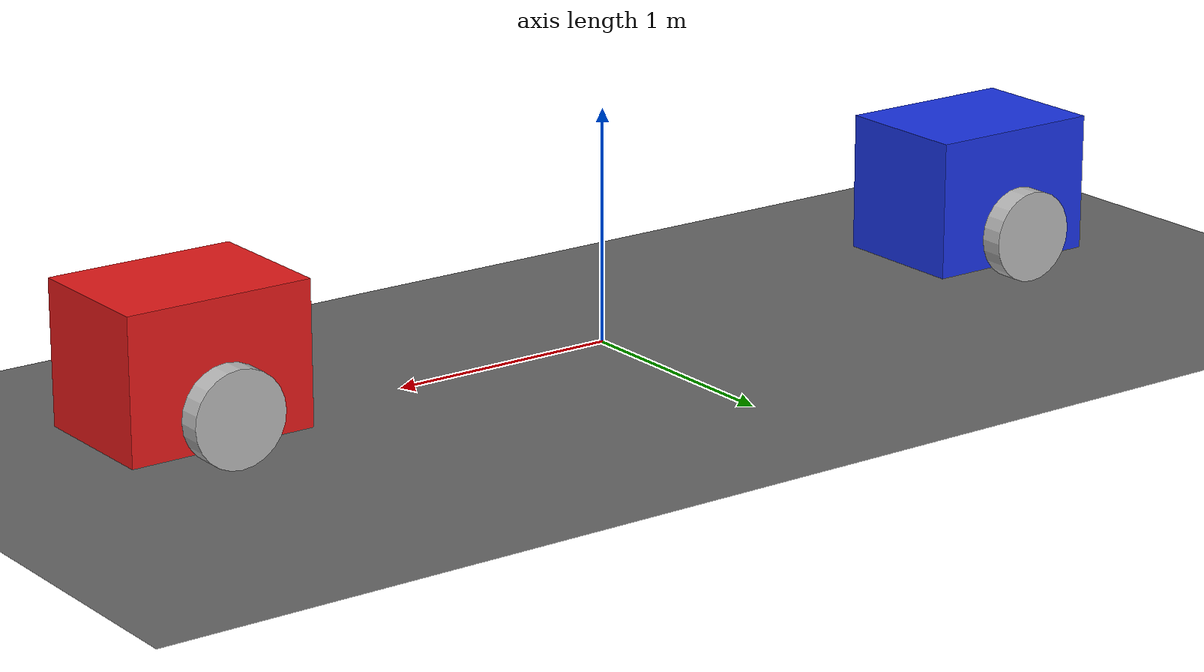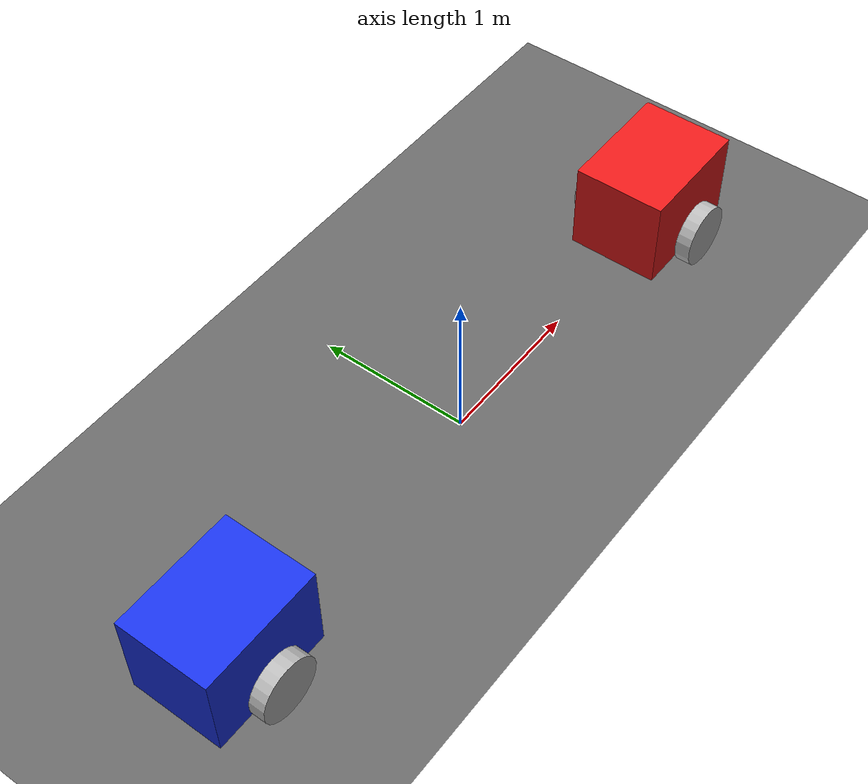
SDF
<?xml version="1.0" ?>
<sdf version="1.10">

  <world name="fight_arena">

    <physics name="physics" type="gz-physics-dartsim">
      <max_step_size>0.001</max_step_size>
      <real_time_factor>1.0</real_time_factor>
    </physics>

    <plugin
      filename="gz-sim-physics-system"
      name="gz::sim::systems::Physics">
    </plugin>

    <plugin
      filename="gz-sim-user-commands-system"
      name="gz::sim::systems::UserCommands">
    </plugin>

    <plugin
      filename="gz-sim-scene-broadcaster-system"
      name="gz::sim::systems::SceneBroadcaster">
    </plugin>

    <light type="directional" name="sun">
      <cast_shadows>true</cast_shadows>
      <pose>0 0 10 0 0 0</pose>
      <diffuse>0.8 0.8 0.8 1</diffuse>
      <specular>0.2 0.2 0.2 1</specular>
      <direction>-0.5 0.1 -0.9</direction>
    </light>

    <model name="ground_plane">
      <static>true</static>

      <link name="link">

        <collision name="collision">
          <geometry>
            <plane>
              <normal>0 0 1</normal>
              <size>20 20</size>
            </plane>
          </geometry>
        </collision>

        <visual name="visual">
          <geometry>
            <plane>
              <normal>0 0 1</normal>
              <size>20 20</size>
            </plane>
          </geometry>

          <material>
            <ambient>0.4 0.4 0.4 1</ambient>
            <diffuse>0.4 0.4 0.4 1</diffuse>
          </material>

        </visual>

      </link>
    </model>

    <!-- FIGHTER ALPHA - BLUE -->

    <model name="fighter_alpha">

      <pose>-2 0 0.35 0 0 0</pose>

      <link name="body">

        <inertial>
          <mass>10.0</mass>
          <inertia>
            <ixx>1</ixx>
            <iyy>1</iyy>
            <izz>1</izz>
          </inertia>
        </inertial>

        <collision name="body_collision">
          <geometry>
            <box>
              <size>0.8 0.6 0.6</size>
            </box>
          </geometry>
        </collision>

        <visual name="body_visual">
          <geometry>
            <box>
              <size>0.8 0.6 0.6</size>
            </box>
          </geometry>

          <material>
            <ambient>0.1 0.2 0.9 1</ambient>
            <diffuse>0.1 0.2 0.9 1</diffuse>
          </material>

        </visual>

      </link>

      <link name="left_wheel">

        <pose>0 0.38 -0.15 1.5708 0 0</pose>

        <inertial>
          <mass>1.0</mass>
          <inertia>
            <ixx>0.02</ixx>
            <iyy>0.02</iyy>
            <izz>0.02</izz>
          </inertia>
        </inertial>

        <collision name="collision">
          <geometry>
            <cylinder>
              <radius>0.2</radius>
              <length>0.1</length>
            </cylinder>
          </geometry>
        </collision>

        <visual name="visual">
          <geometry>
            <cylinder>
              <radius>0.2</radius>
              <length>0.1</length>
            </cylinder>
          </geometry>
        </visual>

      </link>

      <link name="right_wheel">

        <pose>0 -0.38 -0.15 1.5708 0 0</pose>

        <inertial>
          <mass>1.0</mass>
          <inertia>
            <ixx>0.02</ixx>
            <iyy>0.02</iyy>
            <izz>0.02</izz>
          </inertia>
        </inertial>

        <collision name="collision">
          <geometry>
            <cylinder>
              <radius>0.2</radius>
              <length>0.1</length>
            </cylinder>
          </geometry>
        </collision>

        <visual name="visual">
          <geometry>
            <cylinder>
              <radius>0.2</radius>
              <length>0.1</length>
            </cylinder>
          </geometry>
        </visual>

      </link>

      <joint name="left_wheel_joint" type="revolute">

        <parent>body</parent>
        <child>left_wheel</child>

        <axis>
          <xyz expressed_in="__model__">0 1 0</xyz>
        </axis>

      </joint>

      <joint name="right_wheel_joint" type="revolute">

        <parent>body</parent>
        <child>right_wheel</child>

        <axis>
          <xyz expressed_in="__model__">0 1 0</xyz>
        </axis>

      </joint>

      <plugin
        filename="gz-sim-diff-drive-system"
        name="gz::sim::systems::DiffDrive">

        <left_joint>left_wheel_joint</left_joint>
        <right_joint>right_wheel_joint</right_joint>

        <wheel_separation>0.76</wheel_separation>
        <wheel_radius>0.2</wheel_radius>

        <topic>/fighter_alpha/cmd_vel</topic>

      </plugin>
<plugin
  filename="gz-sim-pose-publisher-system"
  name="gz::sim::systems::PosePublisher">

  <publish_link_pose>false</publish_link_pose>
  <publish_visual_pose>false</publish_visual_pose>
  <publish_collision_pose>false</publish_collision_pose>
  <publish_sensor_pose>false</publish_sensor_pose>

  <publish_model_pose>true</publish_model_pose>

  <use_pose_vector_msg>false</use_pose_vector_msg>

  <update_frequency>20</update_frequency>

</plugin>
    </model>

    <!-- FIGHTER BRAVO - RED -->

    <model name="fighter_bravo">

      <pose>2 0 0.35 0 0 3.14159</pose>

      <link name="body">

        <inertial>
          <mass>10.0</mass>
          <inertia>
            <ixx>1</ixx>
            <iyy>1</iyy>
            <izz>1</izz>
          </inertia>
        </inertial>

        <collision name="body_collision">
          <geometry>
            <box>
              <size>0.8 0.6 0.6</size>
            </box>
          </geometry>
        </collision>

        <visual name="body_visual">
          <geometry>
            <box>
              <size>0.8 0.6 0.6</size>
            </box>
          </geometry>

          <material>
            <ambient>0.9 0.1 0.1 1</ambient>
            <diffuse>0.9 0.1 0.1 1</diffuse>
          </material>

        </visual>

      </link>

      <link name="left_wheel">

        <pose>0 0.38 -0.15 1.5708 0 0</pose>

        <inertial>
          <mass>1.0</mass>
          <inertia>
            <ixx>0.02</ixx>
            <iyy>0.02</iyy>
            <izz>0.02</izz>
          </inertia>
        </inertial>

        <collision name="collision">
          <geometry>
            <cylinder>
              <radius>0.2</radius>
              <length>0.1</length>
            </cylinder>
          </geometry>
        </collision>

        <visual name="visual">
          <geometry>
            <cylinder>
              <radius>0.2</radius>
              <length>0.1</length>
            </cylinder>
          </geometry>
        </visual>

      </link>

      <link name="right_wheel">

        <pose>0 -0.38 -0.15 1.5708 0 0</pose>

        <inertial>
          <mass>1.0</mass>
          <inertia>
            <ixx>0.02</ixx>
            <iyy>0.02</iyy>
            <izz>0.02</izz>
          </inertia>
        </inertial>

        <collision name="collision">
          <geometry>
            <cylinder>
              <radius>0.2</radius>
              <length>0.1</length>
            </cylinder>
          </geometry>
        </collision>

        <visual name="visual">
          <geometry>
            <cylinder>
              <radius>0.2</radius>
              <length>0.1</length>
            </cylinder>
          </geometry>
        </visual>

      </link>

      <joint name="left_wheel_joint" type="revolute">

        <parent>body</parent>
        <child>left_wheel</child>

        <axis>
          <xyz expressed_in="__model__">0 1 0</xyz>
        </axis>

      </joint>

      <joint name="right_wheel_joint" type="revolute">

        <parent>body</parent>
        <child>right_wheel</child>

        <axis>
          <xyz expressed_in="__model__">0 1 0</xyz>
        </axis>

      </joint>

      <plugin
        filename="gz-sim-diff-drive-system"
        name="gz::sim::systems::DiffDrive">

        <left_joint>left_wheel_joint</left_joint>
        <right_joint>right_wheel_joint</right_joint>

        <wheel_separation>0.76</wheel_separation>
        <wheel_radius>0.2</wheel_radius>

        <topic>/fighter_bravo/cmd_vel</topic>

      </plugin>
<plugin
  filename="gz-sim-pose-publisher-system"
  name="gz::sim::systems::PosePublisher">

  <publish_link_pose>false</publish_link_pose>
  <publish_visual_pose>false</publish_visual_pose>
  <publish_collision_pose>false</publish_collision_pose>
  <publish_sensor_pose>false</publish_sensor_pose>

  <publish_model_pose>true</publish_model_pose>

  <use_pose_vector_msg>false</use_pose_vector_msg>

  <update_frequency>20</update_frequency>

</plugin>
    </model>

  </world>

</sdf>
